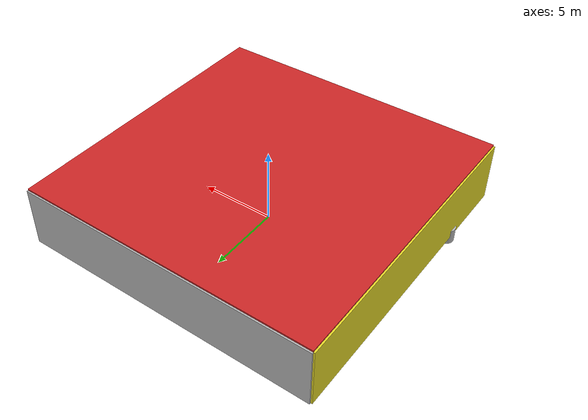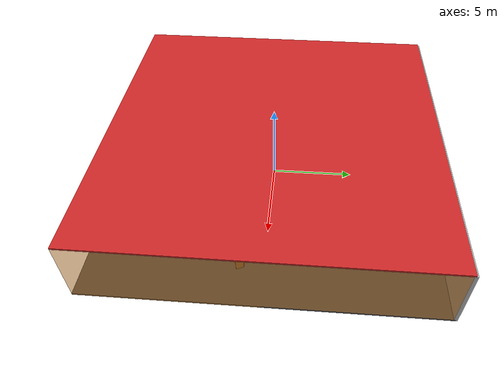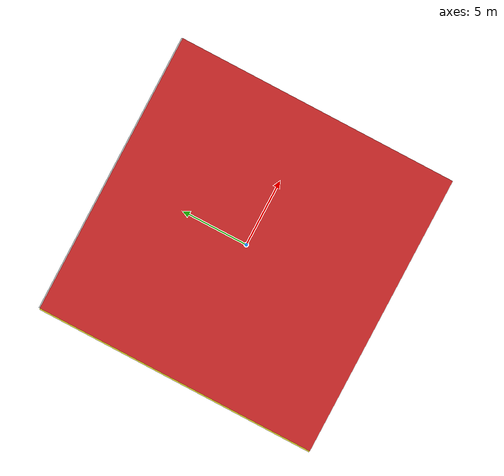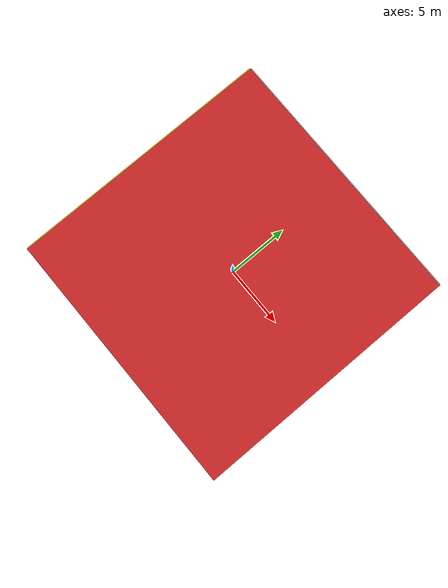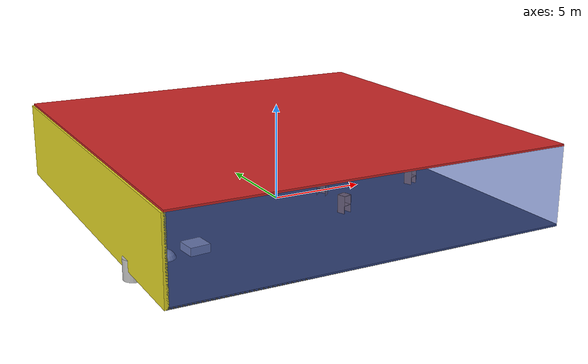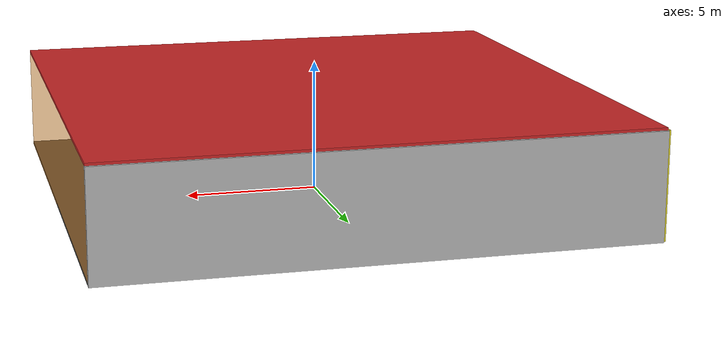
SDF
<sdf version="1.4">
 <world name="default">
  <physics type="ode">
   <max_step_size>0.001</max_step_size>
   <real_time_factor>1</real_time_factor>
   <real_time_update_rate>1000</real_time_update_rate>
   <gravity>0 0 -9.8</gravity>
  </physics>
  <scene><ambient>0.4 0.4 0.4 1</ambient><background>0.7 0.7 0.7 1</background><shadows>1</shadows></scene>
  <model name="Surrounding">
   <static>1</static>
   <link name="Ceiling">
    <collision name="Ceiling_Collision"><geometry><box><size>20 20 0.1</size></box></geometry></collision>
    <visual name="Ceiling_Visual">
     <geometry><box><size>20 20 0.1</size></box></geometry>
     <material>
      <script><uri>file://media/materials/scripts/gazebo.material</uri><name>Gazebo/Red</name></script>
     </material>
    </visual>
    <pose>0 0 4.05 0 0 0</pose>
   </link>
   <link name="Wall_South">
    <collision name="Wall_South_Collision">
     <geometry><box><size>20 0 4</size></box></geometry>
     <pose>0 0 2 0 -0 0</pose>
    </collision>
    <visual name="Wall_South_Visual">
     <pose>0 0 2 0 -0 0</pose>
     <geometry><box><size>20 0 4</size></box></geometry>
     <material>
      <script><uri>file://media/materials/scripts/gazebo.material</uri><name>Gazebo/BlueTransparent</name></script>
     </material>
    </visual>
    <velocity_decay><linear>0</linear><angular>0</angular></velocity_decay>
    <pose>0 -10 0 0 -0 0</pose>
   </link>
   <link name="Wall_East">
    <collision name="Wall_21_Collision">
     <geometry><box><size>20 0 4</size></box></geometry>
     <pose>0 0 2 0 -0 0</pose>
    </collision>
    <visual name="Wall_21_Visual">
     <pose>0 0 2 0 -0 0</pose>
     <geometry><box><size>20 0 4</size></box></geometry>
     <material>
      <script>
       <uri>file://media/materials/scripts/gazebo.material</uri>
       <name>Gazebo/OrangeTransparent</name>
      </script>
     </material>
    </visual>
    <velocity_decay><linear>0</linear><angular>0</angular></velocity_decay>
    <pose>10 0 0 0 -0 1.5708</pose>
   </link>
   <link name="Wall_North">
    <collision name="Wall_22_Collision">
     <geometry><box><size>20 0.2 4</size></box></geometry>
     <pose>0 0 2 0 -0 0</pose>
    </collision>
    <visual name="Wall_22_Visual">
     <pose>0 0 2 0 -0 0</pose>
     <geometry><box><size>20 0.2 4</size></box></geometry>
     <material>
      <script><uri>file://media/materials/scripts/gazebo.material</uri><name>Gazebo/JointAnchor</name></script>
     </material>
    </visual>
    <velocity_decay><linear>0</linear><angular>0</angular></velocity_decay>
    <pose>0 10 0 0 -0 0</pose>
   </link>
   <link name="Wall_West">
    <collision name="Wall_23_Collision">
     <geometry><box><size>20 0.2 4</size></box></geometry>
     <pose>0 0 2 0 -0 0</pose>
    </collision>
    <visual name="Wall_23_Visual">
     <pose>0 0 2 0 -0 0</pose>
     <geometry><box><size>20 0.2 4</size></box></geometry>
     <material>
      <script><uri>file://media/materials/scripts/gazebo.material</uri><name>Gazebo/Yellow</name></script>
     </material>
    </visual>
    <velocity_decay><linear>0</linear><angular>0</angular></velocity_decay>
    <pose>-10 0 0 0 0 -1.5708</pose>
   </link>
   <link name="Ground_link">
    <collision name="collision">
     <pose>0 0 .05 0 -0 0</pose>
     <geometry><box><size>20 20 0.1</size></box></geometry>
    </collision>
    <visual name="visual">
     <pose>0 0 .05 0 -0 0</pose>
     <geometry><box><size>20 20 0.1</size></box></geometry>
     <material>
      <script><uri>file://media/materials/scripts/gazebo.material</uri><name>Gazebo/Road</name></script>
     </material>
    </visual>
   </link>
   <static>1</static>
  </model>
  <spherical_coordinates>
   <surface_model>EARTH_WGS84</surface_model>
   <latitude_deg>0</latitude_deg>
   <longitude_deg>0</longitude_deg>
   <elevation>0</elevation>
   <heading_deg>0</heading_deg>
  </spherical_coordinates>
  <light name="lightball_0" type="diffuse">
   <diffuse>0.8 0.8 0.8 1</diffuse>
   <specular>0.2 0.2 0.2 1</specular>
   <attenuation>
    <range>100</range>
    <constant>0.7</constant>
    <linear>0.01</linear>
    <quadratic>0.001</quadratic>
   </attenuation>
   <direction>-0.5 0.1 -0.9</direction>
   <pose>4.78436359921 -2.98936555058 2.03749764577 0 0 0</pose>
  </light>
  <light name="lightball_1" type="diffuse">
   <diffuse>0.8 0.8 0.8 1</diffuse>
   <specular>0.2 0.2 0.2 1</specular>
   <attenuation>
    <range>100</range>
    <constant>0.7</constant>
    <linear>0.01</linear>
    <quadratic>0.001</quadratic>
   </attenuation>
   <direction>-0.5 0.1 -0.9</direction>
   <pose>9.52351867007 8.57388828073 1.7091795986 0 0 0</pose>
  </light>
  <light name="lightball_2" type="diffuse">
   <diffuse>0.8 0.8 0.8 1</diffuse>
   <specular>0.2 0.2 0.2 1</specular>
   <attenuation>
    <range>100</range>
    <constant>0.7</constant>
    <linear>0.01</linear>
    <quadratic>0.001</quadratic>
   </attenuation>
   <direction>-0.5 0.1 -0.9</direction>
   <pose>8.25447891161 -5.94583726457 3.51425543442 0 0 0</pose>
  </light>
  <light name="lightball_3" type="diffuse">
   <diffuse>0.8 0.8 0.8 1</diffuse>
   <specular>0.2 0.2 0.2 1</specular>
   <attenuation>
    <range>100</range>
    <constant>0.7</constant>
    <linear>0.01</linear>
    <quadratic>0.001</quadratic>
   </attenuation>
   <direction>-0.5 0.1 -0.9</direction>
   <pose>3.31440687773 6.3009231851 2.79520081395 0 0 0</pose>
  </light>
  <light name="lightball_4" type="diffuse">
   <diffuse>0.8 0.8 0.8 1</diffuse>
   <specular>0.2 0.2 0.2 1</specular>
   <attenuation>
    <range>100</range>
    <constant>0.7</constant>
    <linear>0.01</linear>
    <quadratic>0.001</quadratic>
   </attenuation>
   <direction>-0.5 0.1 -0.9</direction>
   <pose>-9.9762507046 7.92901127626 2.18023246872 0 0 0</pose>
  </light>
  <light name="lightball_5" type="diffuse">
   <diffuse>0.8 0.8 0.8 1</diffuse>
   <specular>0.2 0.2 0.2 1</specular>
   <attenuation>
    <range>100</range>
    <constant>0.7</constant>
    <linear>0.01</linear>
    <quadratic>0.001</quadratic>
   </attenuation>
   <direction>-0.5 0.1 -0.9</direction>
   <pose>5.89627415086 -8.61734784674 1.85839037257 0 0 0</pose>
  </light>
  <light name="lightball_6" type="diffuse">
   <diffuse>0.8 0.8 0.8 1</diffuse>
   <specular>0.2 0.2 0.2 1</specular>
   <attenuation>
    <range>100</range>
    <constant>0.7</constant>
    <linear>0.01</linear>
    <quadratic>0.001</quadratic>
   </attenuation>
   <direction>-0.5 0.1 -0.9</direction>
   <pose>-3.81719603956 -7.94703945462 2.48799804167 0 0 0</pose>
  </light>
  <include>
   <uri>model://textured_shapes</uri>
   <pose>-8.23441071366 -5.25869546779 0 0 0 1.67486115912</pose>
  </include>
  <include>
   <uri>model://construction_cone</uri>
   <pose>-7.30435419795 1.55542335213 0 0 0 2.82802376221</pose>
  </include>
  <include><uri>model://cabinet</uri><pose>1.84116380945 -3.77590741076 0 0 0 1.87422211041</pose></include>
  <include><uri>model://cabinet</uri><pose>2.28176990675 -0.86684136887 0 0 0 0.733447140503</pose></include>
  <include><uri>model://table</uri><pose>4.78238351197 6.7623994719 0 0 0 2.31064133062</pose></include>
  <include><uri>model://cabinet</uri><pose>7.54124997709 -1.40305141773 0 0 0 1.9745194103</pose></include>
 </world>
</sdf>

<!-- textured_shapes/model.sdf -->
<sdf version="1.6">
  <model name="textured_shapes">
    <pose>0 0 0.5 0 0 0</pose>
    <link name="box">
      <pose>0 -1.5 0 0 0 0</pose>
      <collision name="collision">
        <geometry>
          <box>
            <size>1 1 1</size>
          </box>
        </geometry>
      </collision>
      <visual name="visual">
        <geometry>
          <box>
            <size>1 1 1</size>
          </box>
        </geometry>
        <material>
          <script>
            <uri>model://../model_source/models/textured_shapes/materials/scripts</uri>
            <uri>model://../model_source/models/textured_shapes/materials/textures</uri>
            <name>TexturedShape/Squares</name>
          </script>
        </material>
      </visual>
    </link>
    <link name="sphere">
      <collision name="collision">
        <geometry>
          <sphere>
            <radius>0.5</radius>
          </sphere>
        </geometry>
      </collision>
      <visual name="visual">
        <geometry>
          <sphere>
            <radius>0.5</radius>
          </sphere>
        </geometry>
        <material>
          <script>
            <uri>model://../model_source/models/textured_shapes/materials/scripts</uri>
            <uri>model://../model_source/models/textured_shapes/materials/textures</uri>
            <name>TexturedShape/Squares</name>
          </script>
        </material>
      </visual>
    </link>
    <link name="cylinder">
      <pose>0 1.5 0 0 0 0</pose>
      <collision name="collision">
        <geometry>
          <cylinder>
            <radius>0.5</radius>
            <length>1</length>
          </cylinder>
        </geometry>
      </collision>
      <visual name="visual">
        <geometry>
          <cylinder>
            <radius>0.5</radius>
            <length>1</length>
          </cylinder>
        </geometry>
        <material>
          <script>
            <uri>model://../model_source/models/textured_shapes/materials/scripts</uri>
            <uri>model://../model_source/models/textured_shapes/materials/textures</uri>
            <name>TexturedShape/Squares</name>
          </script>
        </material>
      </visual>
    </link>
  </model>
</sdf>

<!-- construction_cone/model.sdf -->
<sdf version="1.5">
  <model name="Construction Cone">
    <link name="link">
      <collision name="collision">
        <geometry>
          <mesh>
            <scale>10 10 10</scale>
            <uri>file://isr-testbed/construction_cone/meshes/construction_cone.dae</uri>
          </mesh>
        </geometry>
      </collision>
      <visual name="visual">
        <geometry>
          <mesh>
            <scale>10 10 10</scale>
            <uri>file://isr-testbed/construction_cone/meshes/construction_cone.dae</uri>
          </mesh>
        </geometry>
      </visual>
    </link>
  </model>
</sdf>

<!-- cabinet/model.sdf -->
<sdf version="1.5">
  <model name="cabinet">
    <static>true</static>
    <link name="cabinet_bottom_plate">
      <inertial>
        <pose>0 0 -1 0 0 0</pose>
        <inertia>
          <ixx>2.050000</ixx>
          <ixy>0</ixy>
          <ixz>0</ixz>
          <iyy>2.050000</iyy>
          <iyz>0</iyz>
          <izz>2.050000</izz>
        </inertia>
        <mass>25.000000</mass>
      </inertial>
      <collision name="cabinet_bottom_plate_geom">
        <pose>0 0 0.010000 0 0 0</pose>
        <geometry>
          <box>
            <size>0.450000 0.450000 0.020000</size>
          </box>
        </geometry>
      </collision>
      <visual name="cabinet_bottom_plate_geom_visual">
        <pose>0 0 0.010000 0 0 0</pose>
        <geometry>
          <box>
            <size>0.450000 0.450000 0.020000</size>
          </box>
        </geometry>
        <material>
          <script>
            <uri>model://media/materials/scripts/gazebo.material</uri>
            <name>Gazebo/Wood</name>
          </script>
        </material>
      </visual>
      <collision name="cabinet_bottom_plate_geom_cabinet_back_plate">
        <pose>0.235000 0 0.510000 0 0 0</pose>
        <geometry>
          <box>
            <size>0.020000 0.450000 1.020000</size>
          </box>
        </geometry>
      </collision>
      <visual name="cabinet_bottom_plate_geom_cabinet_back_plate_visual">
        <pose>0.235000 0 0.510000 0 0 0</pose>
        <geometry>
          <box>
            <size>0.020000 0.450000 1.020000</size>
          </box>
        </geometry>
        <material>
          <script>
            <uri>model://media/materials/scripts/gazebo.material</uri>
            <name>Gazebo/Wood</name>
          </script>
        </material>
      </visual>
      <collision name="cabinet_bottom_plate_geom_cabinet_left_plate">
        <pose>0 0.235000 0.510000 0 0 0</pose>
        <geometry>
          <box>
            <size>0.450000 0.020000 1.020000</size>
          </box>
        </geometry>
      </collision>
      <visual name="cabinet_bottom_plate_geom_cabinet_left_plate_visual">
        <pose>0 0.235000 0.510000 0 0 0</pose>
        <geometry>
          <box>
            <size>0.450000 0.020000 1.020000</size>
          </box>
        </geometry>
        <material>
          <script>
            <uri>model://media/materials/scripts/gazebo.material</uri>
            <name>Gazebo/Wood</name>
          </script>
        </material>
      </visual>
      <collision name="cabinet_bottom_plate_geom_cabinet_middle_plate">
        <pose>0 0 0.510000 0 0 0</pose>
        <geometry>
          <box>
            <size>0.450000 0.450000 0.020000</size>
          </box>
        </geometry>
      </collision>
      <visual name="cabinet_bottom_plate_geom_cabinet_middle_plate_visual">
        <pose>0 0 0.510000 0 0 0</pose>
        <geometry>
          <box>
            <size>0.450000 0.450000 0.020000</size>
          </box>
        </geometry>
        <material>
          <script>
            <uri>model://media/materials/scripts/gazebo.material</uri>
            <name>Gazebo/Wood</name>
          </script>
        </material>
      </visual>
      <collision name="cabinet_bottom_plate_geom_cabinet_right_plate">
        <pose>0 -0.235000 0.510000 0 0 0</pose>
        <geometry>
          <box>
            <size>0.450000 0.020000 1.020000</size>
          </box>
        </geometry>
      </collision>
      <visual name="cabinet_bottom_plate_geom_cabinet_right_plate_visual">
        <pose>0 -0.235000 0.510000 0 0 0</pose>
        <geometry>
          <box>
            <size>0.450000 0.020000 1.020000</size>
          </box>
        </geometry>
        <material>
          <script>
            <uri>model://media/materials/scripts/gazebo.material</uri>
            <name>Gazebo/Wood</name>
          </script>
        </material>
      </visual>
      <collision name="cabinet_bottom_plate_geom_cabinet_top_plate">
        <pose>0 0 1.010000 0 0 0</pose>
        <geometry>
          <box>
            <size>0.450000 0.450000 0.020000</size>
          </box>
        </geometry>
      </collision>
      <visual name="cabinet_bottom_plate_geom_cabinet_top_plate_visual">
        <pose>0 0 1.010000 0 0 0</pose>
        <geometry>
          <box>
            <size>0.450000 0.450000 0.020000</size>
          </box>
        </geometry>
        <material>
          <script>
            <uri>model://media/materials/scripts/gazebo.material</uri>
            <name>Gazebo/Wood</name>
          </script>
        </material>
      </visual>
    </link>
  </model>
</sdf>

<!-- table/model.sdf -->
<sdf version="1.5">
  <model name="table">
    <static>true</static>
    <link name="link">
      <collision name="surface">
        <pose>0 0 1.0 0 0 0</pose>
        <geometry>
          <box>
            <size>1.5 0.8 0.03</size>
          </box>
        </geometry>
        <surface>
          <friction>
            <ode>
              <mu>0.6</mu>
              <mu2>0.6</mu2>
            </ode>
          </friction>
        </surface>
      </collision>
      <visual name="visual1">
        <pose>0 0 1.0 0 0 0</pose>
        <geometry>
          <box>
            <size>1.5 0.8 0.03</size>
          </box>
        </geometry>
        <material>
          <script>
            <uri>model://media/materials/scripts/gazebo.material</uri>
            <name>Gazebo/Wood</name>
          </script>
        </material>
      </visual>
      <collision name="front_left_leg">
        <pose>0.68 0.38 0.5 0 0 0</pose>
        <geometry>
          <cylinder>
            <radius>0.02</radius>
            <length>1.0</length>
          </cylinder>
        </geometry>
      </collision>
      <visual name="front_left_leg">
        <pose>0.68 0.38 0.5 0 0 0</pose>
        <geometry>
          <cylinder>
            <radius>0.02</radius>
            <length>1.0</length>
          </cylinder>
        </geometry>
        <material>
          <script>
            <uri>model://media/materials/scripts/gazebo.material</uri>
            <name>Gazebo/Grey</name>
          </script>
        </material>
      </visual>
      <collision name="front_right_leg">
        <pose>0.68 -0.38 0.5 0 0 0</pose>
        <geometry>
          <cylinder>
            <radius>0.02</radius>
            <length>1.0</length>
          </cylinder>
        </geometry>
      </collision>
      <visual name="front_right_leg">
        <pose>0.68 -0.38 0.5 0 0 0</pose>
        <geometry>
          <cylinder>
            <radius>0.02</radius>
            <length>1.0</length>
          </cylinder>
        </geometry>
        <material>
          <script>
            <uri>model://media/materials/scripts/gazebo.material</uri>
            <name>Gazebo/Grey</name>
          </script>
        </material>
      </visual>
      <collision name="back_right_leg">
        <pose>-0.68 -0.38 0.5 0 0 0</pose>
        <geometry>
          <cylinder>
            <radius>0.02</radius>
            <length>1.0</length>
          </cylinder>
        </geometry>
      </collision>
      <visual name="back_right_leg">
        <pose>-0.68 -0.38 0.5 0 0 0</pose>
        <geometry>
          <cylinder>
            <radius>0.02</radius>
            <length>1.0</length>
          </cylinder>
        </geometry>
        <material>
          <script>
            <uri>model://media/materials/scripts/gazebo.material</uri>
            <name>Gazebo/Grey</name>
          </script>
        </material>
      </visual>
      <collision name="back_left_leg">
        <pose>-0.68 0.38 0.5 0 0 0</pose>
        <geometry>
          <cylinder>
            <radius>0.02</radius>
            <length>1.0</length>
          </cylinder>
        </geometry>
      </collision>
      <visual name="back_left_leg">
        <pose>-0.68 0.38 0.5 0 0 0</pose>
        <geometry>
          <cylinder>
            <radius>0.02</radius>
            <length>1.0</length>
          </cylinder>
        </geometry>
        <material>
          <script>
            <uri>model://media/materials/scripts/gazebo.material</uri>
            <name>Gazebo/Grey</name>
          </script>
        </material>
      </visual>
    </link>
  </model>
</sdf>
